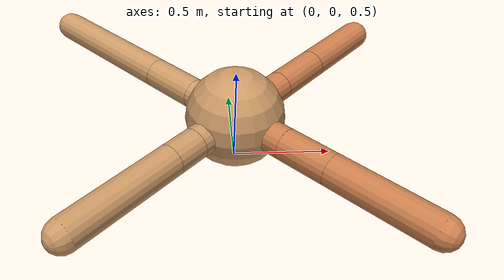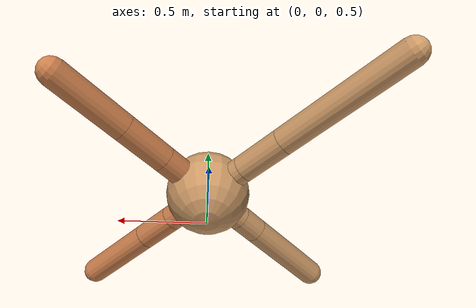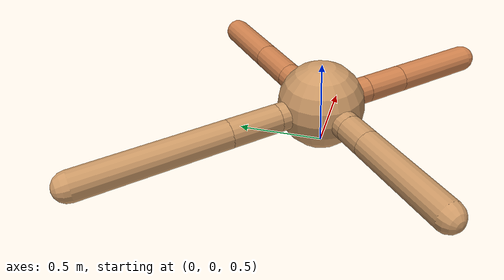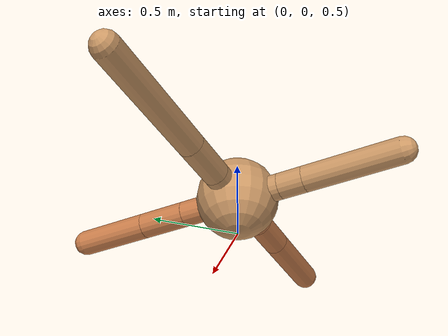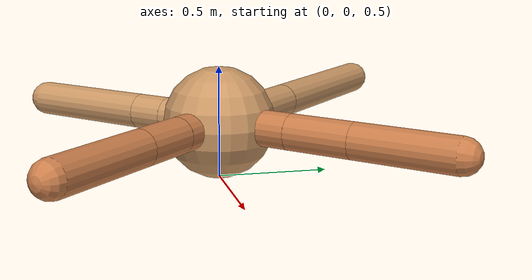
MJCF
<mujoco model="ant">
  <compiler angle="degree" coordinate="local" inertiafromgeom="true" />
  <option integrator="RK4" timestep="0.01" />
  <custom>
    <numeric data="0.0 0.0 0.55 1.0 0.0 0.0 0.0 0.0 1.0 0.0 -1.0 0.0 -1.0 0.0 1.0" name="init_qpos" />
  </custom>
  <default>
    <joint armature="1" damping="1" limited="true" />
    <geom conaffinity="0" condim="3" density="5.0" friction="1.5 0.1 0.1" margin="0.01" rgba="0.8 0.6 0.4 1" />
  </default>
  <worldbody>
    <body name="torso" pos="0 0 0.75">
      <geom name="torso_geom" pos="0 0 0" size="0.25" type="sphere" />

      <body name="front_left_leg" pos="0 0 0">
        <geom fromto="0.0 0.0 0.0 0.25567259196791914 0.25567259196791914 0.0" name="aux_1_geom" size="0.08" type="capsule" rgba=".8 .5 .3 1" />
        <body name="aux_1" pos="0.25567259196791914 0.25567259196791914 0.0">
          <joint axis="0 0 1" name="hip_1" pos="0.0 0.0 0.0" range="-40 40" type="hinge" />
          <geom fromto="0.0 0.0 0.0 0.20759546925556016 0.20759546925556016 0.0" name="left_leg_geom" size="0.08" type="capsule" rgba=".8 .5 .3 1" />
          <body pos="0.20759546925556016 0.20759546925556016 0.0" name="front_left_foot">
            <joint axis="-1 1 0" name="ankle_1" pos="0.0 0.0 0.0" range="30 100" type="hinge" />
            <geom fromto="0.0 0.0 0.0 0.3225842155087504 0.3225842155087504 0.0" name="left_ankle_geom" size="0.08" type="capsule" rgba=".8 .5 .3 1" />
          </body>
        </body>
      </body>
      <body name="front_right_leg" pos="0 0 0">
        <geom fromto="0.0 0.0 0.0 -0.2 0.2 0.0" name="aux_2_geom" size="0.08" type="capsule" />
        <body name="aux_2" pos="-0.2 0.2 0.0">
          <joint axis="0 0 1" name="hip_2" pos="0.0 0.0 0.0" range="-40 40" type="hinge" />
          <geom fromto="0.0 0.0 0.0 -0.20362678818240074 0.20362678818240074 0.0" name="right_leg_geom" size="0.08" type="capsule" />
          <body pos="-0.20362678818240074 0.20362678818240074 0.0" name="front_right_foot">
            <joint axis="1 1 0" name="ankle_2" pos="0.0 0.0 0.0" range="-100 -30" type="hinge" />
            <geom fromto="0.0 0.0 0.0 -0.5660484408991133 0.5660484408991133 0.0" name="right_ankle_geom" size="0.08" type="capsule" />
          </body>
        </body>
      </body>
      <body name="left_back_leg" pos="0 0 0">
        <geom fromto="0.0 0.0 0.0 -0.2 -0.2 0.0" name="aux_3_geom" size="0.08" type="capsule" />
        <body name="aux_3" pos="-0.2 -0.2 0.0">
          <joint axis="0 0 1" name="hip_3" pos="0.0 0.0 0.0" range="-40 40" type="hinge" />
          <geom fromto="0.0 0.0 0.0 -0.10902588590767653 -0.10902588590767653 0.0" name="back_leg_geom" size="0.08" type="capsule" />
          <body pos="-0.10902588590767653 -0.10902588590767653 0.0" name="left_back_foot">
            <joint axis="-1 1 0" name="ankle_3" pos="0.0 0.0 0.0" range="-100 -30" type="hinge" />
            <geom fromto="0.0 0.0 0.0 -0.4137731477510581 -0.4137731477510581 0.0" name="third_ankle_geom" size="0.08" type="capsule" />
          </body>
        </body>
      </body>
      <body name="right_back_leg" pos="0 0 0">
        <geom fromto="0.0 0.0 0.0 0.22040996869099488 -0.22040996869099488 0.0" name="aux_4_geom" size="0.08" type="capsule" rgba=".8 .5 .3 1" />
        <body name="aux_4" pos="0.22040996869099488 -0.22040996869099488 0.0">
          <joint axis="0 0 1" name="hip_4" pos="0.0 0.0 0.0" range="-40 40" type="hinge" />
          <geom fromto="0.0 0.0 0.0 0.17650314775130832 -0.17650314775130832 0.0" name="rightback_leg_geom" size="0.08" type="capsule" rgba=".8 .5 .3 1" />
          <body pos="0.17650314775130832 -0.17650314775130832 0.0" name="right_back_foot">
            <joint axis="1 1 0" name="ankle_4" pos="0.0 0.0 0.0" range="30 100" type="hinge" />
            <geom fromto="0.0 0.0 0.0 0.36581693539434157 -0.36581693539434157 0.0" name="fourth_ankle_geom" size="0.08" type="capsule" rgba=".8 .5 .3 1" />
          </body>
        </body>
      </body>
    </body>
  </worldbody>
  <actuator>
    <motor ctrllimited="true" ctrlrange="-1.0 1.0" joint="hip_4" gear="150" />
    <motor ctrllimited="true" ctrlrange="-1.0 1.0" joint="ankle_4" gear="150" />
    <motor ctrllimited="true" ctrlrange="-1.0 1.0" joint="hip_1" gear="150" />
    <motor ctrllimited="true" ctrlrange="-1.0 1.0" joint="ankle_1" gear="150" />
    <motor ctrllimited="true" ctrlrange="-1.0 1.0" joint="hip_2" gear="150" />
    <motor ctrllimited="true" ctrlrange="-1.0 1.0" joint="ankle_2" gear="150" />
    <motor ctrllimited="true" ctrlrange="-1.0 1.0" joint="hip_3" gear="150" />
    <motor ctrllimited="true" ctrlrange="-1.0 1.0" joint="ankle_3" gear="150" />
  </actuator>
</mujoco>
